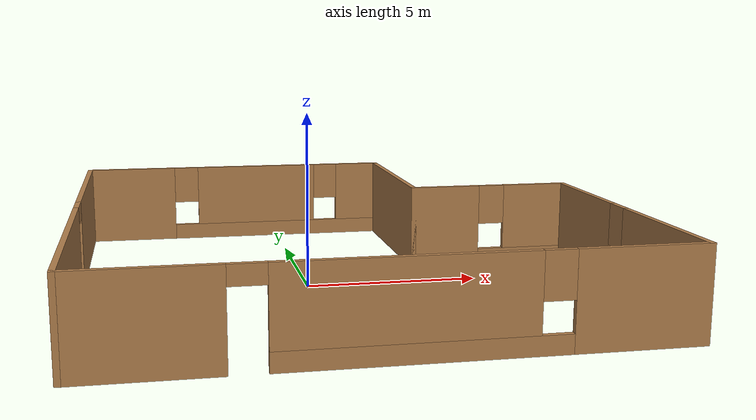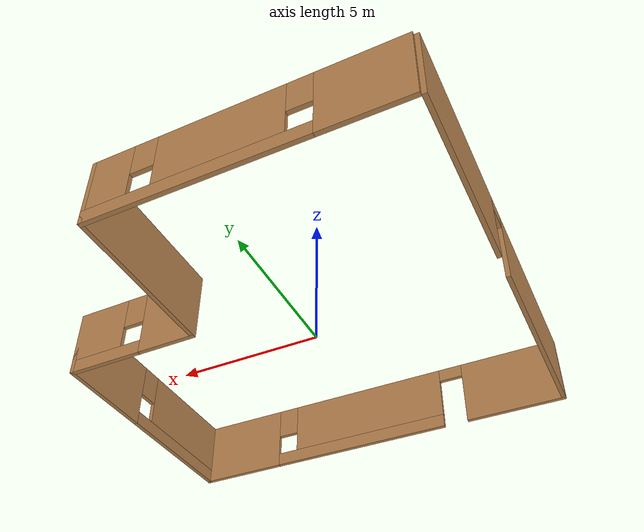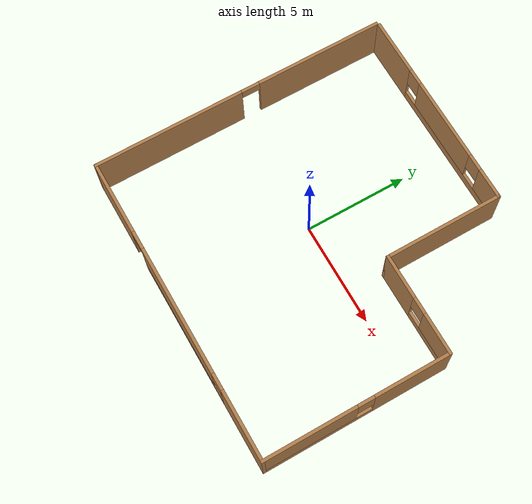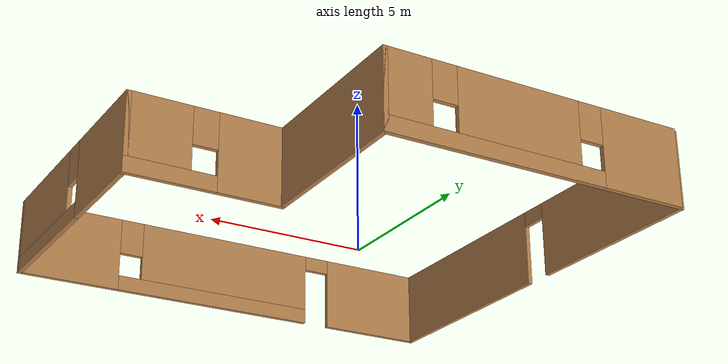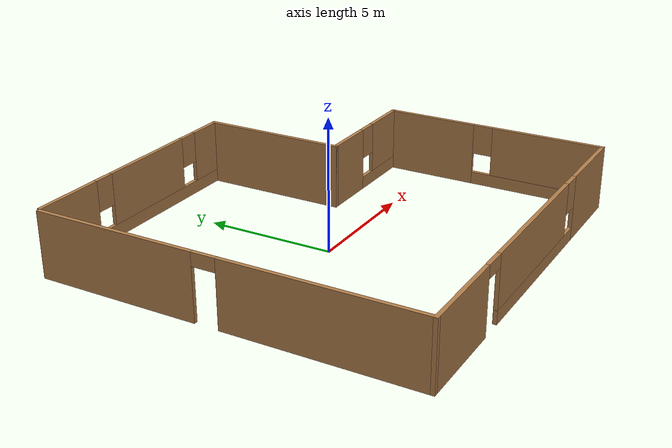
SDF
<?xml version='1.0'?>
<sdf version='1.6'>
  <model name='My_building'>
    <pose frame=''>1.01323 0.156514 0 0 -0 0</pose>
    <link name='Wall_13'>
      <pose frame=''>-2.35 7.225 0 0 -0 0</pose>
      <visual name='Wall_13_Visual_0'>
        <pose frame=''>-3.60872 0 1.25 0 -0 0</pose>
        <geometry>
          <box>
            <size>2.78257 0.15 2.5</size>
          </box>
        </geometry>
        <material>
          <script>
            <uri>file://media/materials/scripts/gazebo.material</uri>
            <name>Gazebo/Wood</name>
          </script>
          <ambient>1 1 1 1</ambient>
        </material>
        <meta>
          <layer>0</layer>
        </meta>
      </visual>
      <collision name='Wall_13_Collision_0'>
        <geometry>
          <box>
            <size>2.78257 0.15 2.5</size>
          </box>
        </geometry>
        <pose frame=''>-3.60872 0 1.25 0 -0 0</pose>
      </collision>
      <visual name='Wall_13_Visual_1'>
        <pose frame=''>1.39128 0 0.25 0 -0 0</pose>
        <geometry>
          <box>
            <size>7.21743 0.15 0.5</size>
          </box>
        </geometry>
        <material>
          <script>
            <uri>file://media/materials/scripts/gazebo.material</uri>
            <name>Gazebo/Wood</name>
          </script>
          <ambient>1 1 1 1</ambient>
        </material>
        <meta>
          <layer>0</layer>
        </meta>
      </visual>
      <collision name='Wall_13_Collision_1'>
        <geometry>
          <box>
            <size>7.21743 0.15 0.5</size>
          </box>
        </geometry>
        <pose frame=''>1.39128 0 0.25 0 -0 0</pose>
      </collision>
      <visual name='Wall_13_Visual_2'>
        <pose frame=''>0.631176 0 1.5 0 -0 0</pose>
        <geometry>
          <box>
            <size>4.09722 0.15 2</size>
          </box>
        </geometry>
        <material>
          <script>
            <uri>file://media/materials/scripts/gazebo.material</uri>
            <name>Gazebo/Wood</name>
          </script>
          <ambient>1 1 1 1</ambient>
        </material>
        <meta>
          <layer>0</layer>
        </meta>
      </visual>
      <collision name='Wall_13_Collision_2'>
        <geometry>
          <box>
            <size>4.09722 0.15 2</size>
          </box>
        </geometry>
        <pose frame=''>0.631176 0 1.5 0 -0 0</pose>
      </collision>
      <visual name='Wall_13_Visual_3'>
        <pose frame=''>4.23989 0 1.5 0 -0 0</pose>
        <geometry>
          <box>
            <size>1.52022 0.15 2</size>
          </box>
        </geometry>
        <material>
          <script>
            <uri>file://media/materials/scripts/gazebo.material</uri>
            <name>Gazebo/Wood</name>
          </script>
          <ambient>1 1 1 1</ambient>
        </material>
        <meta>
          <layer>0</layer>
        </meta>
      </visual>
      <collision name='Wall_13_Collision_3'>
        <geometry>
          <box>
            <size>1.52022 0.15 2</size>
          </box>
        </geometry>
        <pose frame=''>4.23989 0 1.5 0 -0 0</pose>
      </collision>
      <visual name='Wall_13_Visual_4'>
        <pose frame=''>-1.81743 0 1.9 0 -0 0</pose>
        <geometry>
          <box>
            <size>0.8 0.15 1.2</size>
          </box>
        </geometry>
        <material>
          <script>
            <uri>file://media/materials/scripts/gazebo.material</uri>
            <name>Gazebo/Wood</name>
          </script>
          <ambient>1 1 1 1</ambient>
        </material>
        <meta>
          <layer>0</layer>
        </meta>
      </visual>
      <collision name='Wall_13_Collision_4'>
        <geometry>
          <box>
            <size>0.8 0.15 1.2</size>
          </box>
        </geometry>
        <pose frame=''>-1.81743 0 1.9 0 -0 0</pose>
      </collision>
      <visual name='Wall_13_Visual_5'>
        <pose frame=''>3.07979 0 1.9 0 -0 0</pose>
        <geometry>
          <box>
            <size>0.8 0.15 1.2</size>
          </box>
        </geometry>
        <material>
          <script>
            <uri>file://media/materials/scripts/gazebo.material</uri>
            <name>Gazebo/Wood</name>
          </script>
          <ambient>1 1 1 1</ambient>
        </material>
        <meta>
          <layer>0</layer>
        </meta>
      </visual>
      <collision name='Wall_13_Collision_5'>
        <geometry>
          <box>
            <size>0.8 0.15 1.2</size>
          </box>
        </geometry>
        <pose frame=''>3.07979 0 1.9 0 -0 0</pose>
      </collision>
    </link>
    <link name='Wall_14'>
      <collision name='Wall_14_Collision'>
        <geometry>
          <box>
            <size>5.75 0.15 2.5</size>
          </box>
        </geometry>
        <pose frame=''>0 0 1.25 0 -0 0</pose>
      </collision>
      <visual name='Wall_14_Visual'>
        <pose frame=''>0 0 1.25 0 -0 0</pose>
        <geometry>
          <box>
            <size>5.75 0.15 2.5</size>
          </box>
        </geometry>
        <material>
          <script>
            <uri>file://media/materials/scripts/gazebo.material</uri>
            <name>Gazebo/Wood</name>
          </script>
          <ambient>0.760784 0.662745 0.627451 1</ambient>
        </material>
        <meta>
          <layer>0</layer>
        </meta>
      </visual>
      <pose frame=''>2.575 4.425 0 0 0 -1.5708</pose>
    </link>
    <link name='Wall_15'>
      <pose frame=''>5 1.625 0 0 -0 0</pose>
      <visual name='Wall_15_Visual_0'>
        <pose frame=''>-1.41634 0 1.25 0 -0 0</pose>
        <geometry>
          <box>
            <size>2.16732 0.15 2.5</size>
          </box>
        </geometry>
        <material>
          <script>
            <uri>file://media/materials/scripts/gazebo.material</uri>
            <name>Gazebo/Wood</name>
          </script>
          <ambient>0.760784 0.662745 0.627451 1</ambient>
        </material>
        <meta>
          <layer>0</layer>
        </meta>
      </visual>
      <collision name='Wall_15_Collision_0'>
        <geometry>
          <box>
            <size>2.16732 0.15 2.5</size>
          </box>
        </geometry>
        <pose frame=''>-1.41634 0 1.25 0 -0 0</pose>
      </collision>
      <visual name='Wall_15_Visual_1'>
        <pose frame=''>1.08366 0 0.25 0 -0 0</pose>
        <geometry>
          <box>
            <size>2.83268 0.15 0.5</size>
          </box>
        </geometry>
        <material>
          <script>
            <uri>file://media/materials/scripts/gazebo.material</uri>
            <name>Gazebo/Wood</name>
          </script>
          <ambient>0.760784 0.662745 0.627451 1</ambient>
        </material>
        <meta>
          <layer>0</layer>
        </meta>
      </visual>
      <collision name='Wall_15_Collision_1'>
        <geometry>
          <box>
            <size>2.83268 0.15 0.5</size>
          </box>
        </geometry>
        <pose frame=''>1.08366 0 0.25 0 -0 0</pose>
      </collision>
      <visual name='Wall_15_Visual_2'>
        <pose frame=''>1.48366 0 1.5 0 -0 0</pose>
        <geometry>
          <box>
            <size>2.03268 0.15 2</size>
          </box>
        </geometry>
        <material>
          <script>
            <uri>file://media/materials/scripts/gazebo.material</uri>
            <name>Gazebo/Wood</name>
          </script>
          <ambient>0.760784 0.662745 0.627451 1</ambient>
        </material>
        <meta>
          <layer>0</layer>
        </meta>
      </visual>
      <collision name='Wall_15_Collision_2'>
        <geometry>
          <box>
            <size>2.03268 0.15 2</size>
          </box>
        </geometry>
        <pose frame=''>1.48366 0 1.5 0 -0 0</pose>
      </collision>
      <visual name='Wall_15_Visual_3'>
        <pose frame=''>0.06732 0 1.9 0 -0 0</pose>
        <geometry>
          <box>
            <size>0.8 0.15 1.2</size>
          </box>
        </geometry>
        <material>
          <script>
            <uri>file://media/materials/scripts/gazebo.material</uri>
            <name>Gazebo/Wood</name>
          </script>
          <ambient>0.760784 0.662745 0.627451 1</ambient>
        </material>
        <meta>
          <layer>0</layer>
        </meta>
      </visual>
      <collision name='Wall_15_Collision_3'>
        <geometry>
          <box>
            <size>0.8 0.15 1.2</size>
          </box>
        </geometry>
        <pose frame=''>0.06732 0 1.9 0 -0 0</pose>
      </collision>
    </link>
    <link name='Wall_16'>
      <pose frame=''>7.425 -2.8 0 0 0 -1.5708</pose>
      <visual name='Wall_16_Visual_0'>
        <pose frame=''>-2.64832 0 1.25 0 -0 0</pose>
        <geometry>
          <box>
            <size>3.70336 0.15 2.5</size>
          </box>
        </geometry>
        <material>
          <script>
            <uri>file://media/materials/scripts/gazebo.material</uri>
            <name>Gazebo/Wood</name>
          </script>
          <ambient>0.760784 0.662745 0.627451 1</ambient>
        </material>
        <meta>
          <layer>0</layer>
        </meta>
      </visual>
      <collision name='Wall_16_Collision_0'>
        <geometry>
          <box>
            <size>3.70336 0.15 2.5</size>
          </box>
        </geometry>
        <pose frame=''>-2.64832 0 1.25 0 -0 0</pose>
      </collision>
      <visual name='Wall_16_Visual_1'>
        <pose frame=''>1.85168 0 0.25 0 -0 0</pose>
        <geometry>
          <box>
            <size>5.29664 0.15 0.5</size>
          </box>
        </geometry>
        <material>
          <script>
            <uri>file://media/materials/scripts/gazebo.material</uri>
            <name>Gazebo/Wood</name>
          </script>
          <ambient>0.760784 0.662745 0.627451 1</ambient>
        </material>
        <meta>
          <layer>0</layer>
        </meta>
      </visual>
      <collision name='Wall_16_Collision_1'>
        <geometry>
          <box>
            <size>5.29664 0.15 0.5</size>
          </box>
        </geometry>
        <pose frame=''>1.85168 0 0.25 0 -0 0</pose>
      </collision>
      <visual name='Wall_16_Visual_2'>
        <pose frame=''>2.25168 0 1.5 0 -0 0</pose>
        <geometry>
          <box>
            <size>4.49664 0.15 2</size>
          </box>
        </geometry>
        <material>
          <script>
            <uri>file://media/materials/scripts/gazebo.material</uri>
            <name>Gazebo/Wood</name>
          </script>
          <ambient>0.760784 0.662745 0.627451 1</ambient>
        </material>
        <meta>
          <layer>0</layer>
        </meta>
      </visual>
      <collision name='Wall_16_Collision_2'>
        <geometry>
          <box>
            <size>4.49664 0.15 2</size>
          </box>
        </geometry>
        <pose frame=''>2.25168 0 1.5 0 -0 0</pose>
      </collision>
      <visual name='Wall_16_Visual_3'>
        <pose frame=''>-0.396642 0 1.9 0 -0 0</pose>
        <geometry>
          <box>
            <size>0.8 0.15 1.2</size>
          </box>
        </geometry>
        <material>
          <script>
            <uri>file://media/materials/scripts/gazebo.material</uri>
            <name>Gazebo/Wood</name>
          </script>
          <ambient>0.760784 0.662745 0.627451 1</ambient>
        </material>
        <meta>
          <layer>0</layer>
        </meta>
      </visual>
      <collision name='Wall_16_Collision_3'>
        <geometry>
          <box>
            <size>0.8 0.15 1.2</size>
          </box>
        </geometry>
        <pose frame=''>-0.396642 0 1.9 0 -0 0</pose>
      </collision>
    </link>
    <link name='Wall_17'>
      <pose frame=''>0 -7.225 0 0 -0 3.14159</pose>
      <visual name='Wall_17_Visual_0'>
        <pose frame=''>-5.80155 0 1.25 0 -0 0</pose>
        <geometry>
          <box>
            <size>3.3969 0.15 2.5</size>
          </box>
        </geometry>
        <material>
          <script>
            <uri>file://media/materials/scripts/gazebo.material</uri>
            <name>Gazebo/Wood</name>
          </script>
          <ambient>0.760784 0.662745 0.627451 1</ambient>
        </material>
        <meta>
          <layer>0</layer>
        </meta>
      </visual>
      <collision name='Wall_17_Collision_0'>
        <geometry>
          <box>
            <size>3.3969 0.15 2.5</size>
          </box>
        </geometry>
        <pose frame=''>-5.80155 0 1.25 0 -0 0</pose>
      </collision>
      <visual name='Wall_17_Visual_1'>
        <pose frame=''>5.67394 0 1.25 0 -0 0</pose>
        <geometry>
          <box>
            <size>3.65213 0.15 2.5</size>
          </box>
        </geometry>
        <material>
          <script>
            <uri>file://media/materials/scripts/gazebo.material</uri>
            <name>Gazebo/Wood</name>
          </script>
          <ambient>0.760784 0.662745 0.627451 1</ambient>
        </material>
        <meta>
          <layer>0</layer>
        </meta>
      </visual>
      <collision name='Wall_17_Collision_1'>
        <geometry>
          <box>
            <size>3.65213 0.15 2.5</size>
          </box>
        </geometry>
        <pose frame=''>5.67394 0 1.25 0 -0 0</pose>
      </collision>
      <visual name='Wall_17_Visual_2'>
        <pose frame=''>-0.577613 0 0.25 0 -0 0</pose>
        <geometry>
          <box>
            <size>7.05096 0.15 0.5</size>
          </box>
        </geometry>
        <material>
          <script>
            <uri>file://media/materials/scripts/gazebo.material</uri>
            <name>Gazebo/Wood</name>
          </script>
          <ambient>0.760784 0.662745 0.627451 1</ambient>
        </material>
        <meta>
          <layer>0</layer>
        </meta>
      </visual>
      <collision name='Wall_17_Collision_2'>
        <geometry>
          <box>
            <size>7.05096 0.15 0.5</size>
          </box>
        </geometry>
        <pose frame=''>-0.577613 0 0.25 0 -0 0</pose>
      </collision>
      <visual name='Wall_17_Visual_3'>
        <pose frame=''>-0.177613 0 1.5 0 -0 0</pose>
        <geometry>
          <box>
            <size>6.25096 0.15 2</size>
          </box>
        </geometry>
        <material>
          <script>
            <uri>file://media/materials/scripts/gazebo.material</uri>
            <name>Gazebo/Wood</name>
          </script>
          <ambient>0.760784 0.662745 0.627451 1</ambient>
        </material>
        <meta>
          <layer>0</layer>
        </meta>
      </visual>
      <collision name='Wall_17_Collision_3'>
        <geometry>
          <box>
            <size>6.25096 0.15 2</size>
          </box>
        </geometry>
        <pose frame=''>-0.177613 0 1.5 0 -0 0</pose>
      </collision>
      <visual name='Wall_17_Visual_4'>
        <pose frame=''>-3.70309 0 1.9 0 -0 0</pose>
        <geometry>
          <box>
            <size>0.8 0.15 1.2</size>
          </box>
        </geometry>
        <material>
          <script>
            <uri>file://media/materials/scripts/gazebo.material</uri>
            <name>Gazebo/Wood</name>
          </script>
          <ambient>0.760784 0.662745 0.627451 1</ambient>
        </material>
        <meta>
          <layer>0</layer>
        </meta>
      </visual>
      <collision name='Wall_17_Collision_4'>
        <geometry>
          <box>
            <size>0.8 0.15 1.2</size>
          </box>
        </geometry>
        <pose frame=''>-3.70309 0 1.9 0 -0 0</pose>
      </collision>
      <visual name='Wall_17_Visual_5'>
        <pose frame=''>3.39787 0 2.25 0 -0 0</pose>
        <geometry>
          <box>
            <size>0.9 0.15 0.5</size>
          </box>
        </geometry>
        <material>
          <script>
            <uri>file://media/materials/scripts/gazebo.material</uri>
            <name>Gazebo/Wood</name>
          </script>
          <ambient>0.760784 0.662745 0.627451 1</ambient>
        </material>
        <meta>
          <layer>0</layer>
        </meta>
      </visual>
      <collision name='Wall_17_Collision_5'>
        <geometry>
          <box>
            <size>0.9 0.15 0.5</size>
          </box>
        </geometry>
        <pose frame=''>3.39787 0 2.25 0 -0 0</pose>
      </collision>
    </link>
    <link name='Wall_18'>
      <pose frame=''>-7.425 -0.049999 0 0 -0 1.5708</pose>
      <visual name='Wall_18_Visual_0'>
        <pose frame=''>-3.575 0 1.25 0 -0 0</pose>
        <geometry>
          <box>
            <size>7.34999 0.15 2.5</size>
          </box>
        </geometry>
        <material>
          <script>
            <uri>file://media/materials/scripts/gazebo.material</uri>
            <name>Gazebo/Wood</name>
          </script>
          <ambient>0.760784 0.662745 0.627451 1</ambient>
        </material>
        <meta>
          <layer>0</layer>
        </meta>
      </visual>
      <collision name='Wall_18_Collision_0'>
        <geometry>
          <box>
            <size>7.34999 0.15 2.5</size>
          </box>
        </geometry>
        <pose frame=''>-3.575 0 1.25 0 -0 0</pose>
      </collision>
      <visual name='Wall_18_Visual_1'>
        <pose frame=''>4.125 0 1.25 0 -0 0</pose>
        <geometry>
          <box>
            <size>6.25001 0.15 2.5</size>
          </box>
        </geometry>
        <material>
          <script>
            <uri>file://media/materials/scripts/gazebo.material</uri>
            <name>Gazebo/Wood</name>
          </script>
          <ambient>0.760784 0.662745 0.627451 1</ambient>
        </material>
        <meta>
          <layer>0</layer>
        </meta>
      </visual>
      <collision name='Wall_18_Collision_1'>
        <geometry>
          <box>
            <size>6.25001 0.15 2.5</size>
          </box>
        </geometry>
        <pose frame=''>4.125 0 1.25 0 -0 0</pose>
      </collision>
      <visual name='Wall_18_Visual_2'>
        <pose frame=''>0.549992 0 2.25 0 -0 0</pose>
        <geometry>
          <box>
            <size>0.9 0.15 0.5</size>
          </box>
        </geometry>
        <material>
          <script>
            <uri>file://media/materials/scripts/gazebo.material</uri>
            <name>Gazebo/Wood</name>
          </script>
          <ambient>0.760784 0.662745 0.627451 1</ambient>
        </material>
        <meta>
          <layer>0</layer>
        </meta>
      </visual>
      <collision name='Wall_18_Collision_2'>
        <geometry>
          <box>
            <size>0.9 0.15 0.5</size>
          </box>
        </geometry>
        <pose frame=''>0.549992 0 2.25 0 -0 0</pose>
      </collision>
    </link>
    <static>1</static>
  </model>
</sdf>
